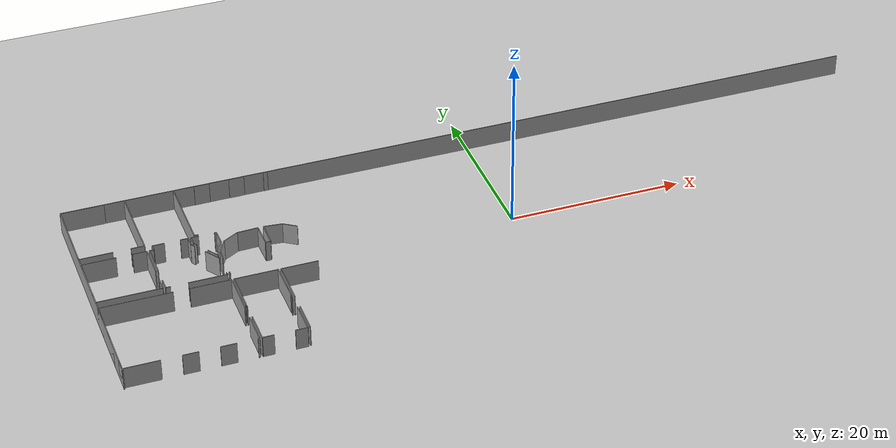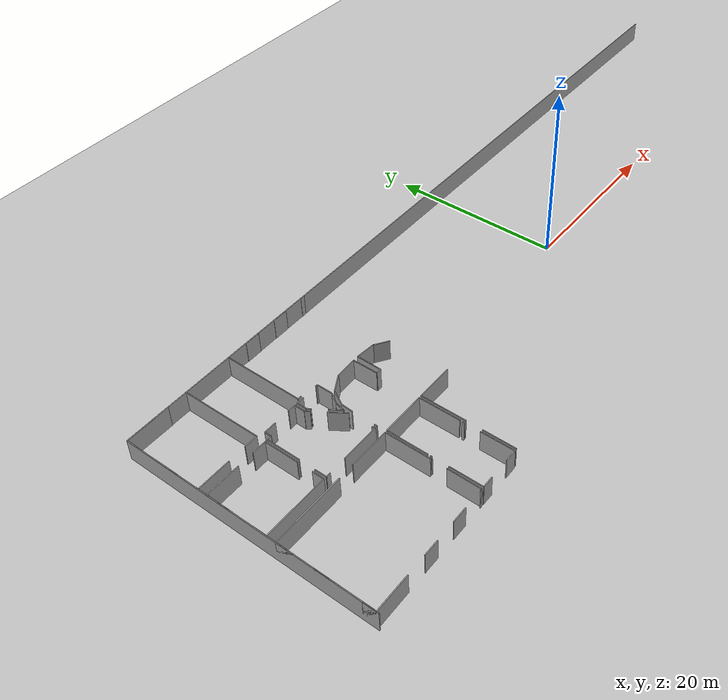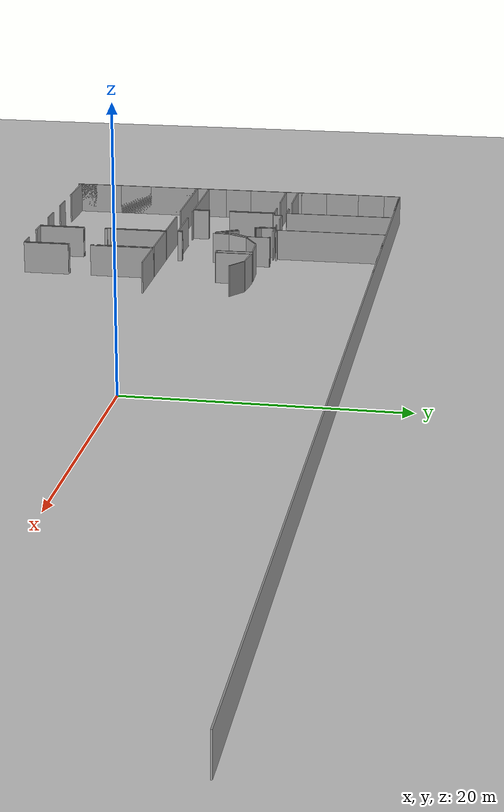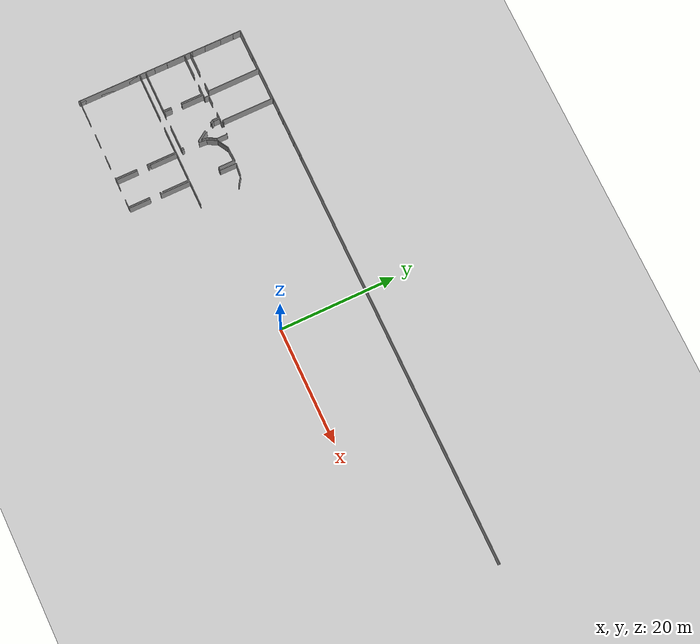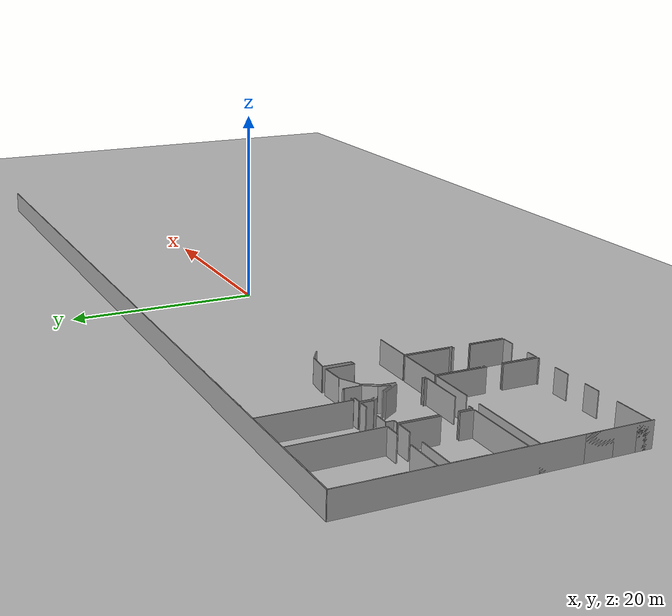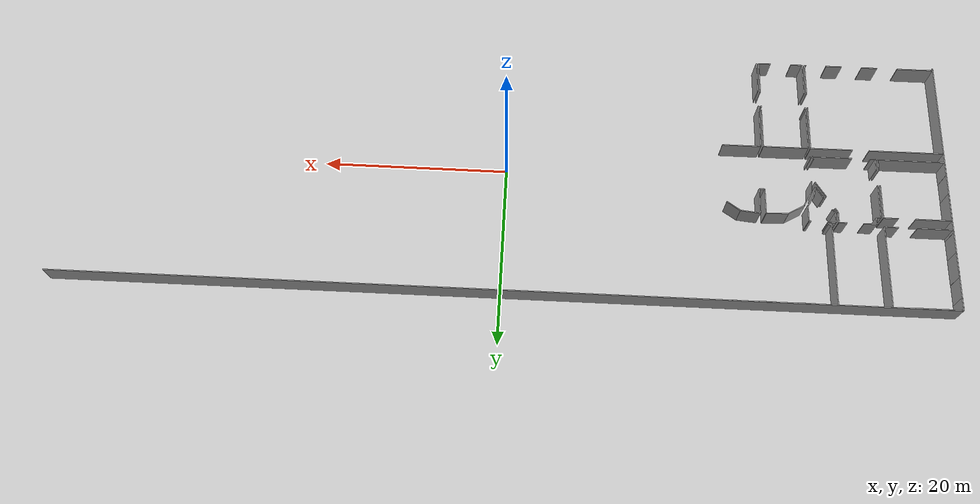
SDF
<sdf version="1.6">
 <world name="default">
  <model name="ground_plane">
   <static>1</static>
   <link name="link">
    <collision name="collision">
     <geometry><plane><normal>0 0 1</normal><size>100 100</size></plane></geometry>
     <surface><friction><ode><mu>100</mu><mu2>50</mu2></ode></friction></surface>
    </collision>
    <visual name="visual">
     <cast_shadows>0</cast_shadows>
     <geometry><plane><normal>0 0 1</normal><size>100 100</size></plane></geometry>
     <material>
      <script><uri>file://media/materials/scripts/gazebo.material</uri><name>Gazebo/Grey</name></script>
     </material>
    </visual>
   </link>
  </model>
  <model name="0510032266_A_40_1_103">
   <static>1</static>
   <link name="Wall_0">
    <collision name="Wall_0_Collision">
     <geometry><box><size>1.51094070373 0.1 2.5</size></box></geometry>
     <pose>0.755470351867 0 1.25 0 0 0</pose>
    </collision>
    <visual name="Wall_0_Visual">
     <pose>0.755470351867 0 1.25 0 0 0</pose>
     <geometry><box><size>1.51094070373 0.1 2.5</size></box></geometry>
     <material>
      <script><uri>file://media/materials/scripts/gazebo.material</uri><name>Gazebo/Grey</name></script>
      <ambient>1 1 1 1</ambient>
     </material>
    </visual>
    <pose>7.24809719992 -9.0151144854 0 0 0 3.14159265359</pose>
   </link>
   <link name="Wall_1">
    <collision name="Wall_1_Collision">
     <geometry><box><size>3.74884943281 0.1 2.5</size></box></geometry>
     <pose>1.87442471641 0 1.25 0 0 0</pose>
    </collision>
    <visual name="Wall_1_Visual">
     <pose>1.87442471641 0 1.25 0 0 0</pose>
     <geometry><box><size>3.74884943281 0.1 2.5</size></box></geometry>
     <material>
      <script><uri>file://media/materials/scripts/gazebo.material</uri><name>Gazebo/Grey</name></script>
      <ambient>1 1 1 1</ambient>
     </material>
    </visual>
    <pose>3.76167230577 -9.0151144854 0 0 0 3.14159265359</pose>
   </link>
   <link name="Wall_2">
    <collision name="Wall_2_Collision">
     <geometry><box><size>0.356882137484 0.1 2.5</size></box></geometry>
     <pose>0.178441068742 0 1.25 0 0 0</pose>
    </collision>
    <visual name="Wall_2_Visual">
     <pose>0.178441068742 0 1.25 0 0 0</pose>
     <geometry><box><size>0.356882137484 0.1 2.5</size></box></geometry>
     <material>
      <script><uri>file://media/materials/scripts/gazebo.material</uri><name>Gazebo/Grey</name></script>
      <ambient>1 1 1 1</ambient>
     </material>
    </visual>
    <pose>0.0128228729583 -9.0151144854 0 0 0 1.57079632679</pose>
   </link>
   <link name="Wall_3">
    <collision name="Wall_3_Collision">
     <geometry><box><size>2.80008379303 0.1 2.5</size></box></geometry>
     <pose>1.40004189652 0 1.25 0 0 0</pose>
    </collision>
    <visual name="Wall_3_Visual">
     <pose>1.40004189652 0 1.25 0 0 0</pose>
     <geometry><box><size>2.80008379303 0.1 2.5</size></box></geometry>
     <material>
      <script><uri>file://media/materials/scripts/gazebo.material</uri><name>Gazebo/Grey</name></script>
      <ambient>1 1 1 1</ambient>
     </material>
    </visual>
    <pose>0.0128228729583 -6.42984555421 0 0 0 1.57079632679</pose>
   </link>
   <link name="Wall_4">
    <collision name="Wall_4_Collision">
     <geometry><box><size>1.328373463 0.1 2.5</size></box></geometry>
     <pose>0.6641867315 0 1.25 0 0 0</pose>
    </collision>
    <visual name="Wall_4_Visual">
     <pose>0.6641867315 0 1.25 0 0 0</pose>
     <geometry><box><size>1.328373463 0.1 2.5</size></box></geometry>
     <material>
      <script><uri>file://media/materials/scripts/gazebo.material</uri><name>Gazebo/Grey</name></script>
      <ambient>1 1 1 1</ambient>
     </material>
    </visual>
    <pose>0.0128228729583 -1.35770102393 0 0 0 1.57079632679</pose>
   </link>
   <link name="Wall_5">
    <collision name="Wall_5_Collision">
     <geometry><box><size>4.88183278212 0.1 2.5</size></box></geometry>
     <pose>2.44091639106 0 1.25 0 0 0</pose>
    </collision>
    <visual name="Wall_5_Visual">
     <pose>2.44091639106 0 1.25 0 0 0</pose>
     <geometry><box><size>4.88183278212 0.1 2.5</size></box></geometry>
     <material>
      <script><uri>file://media/materials/scripts/gazebo.material</uri><name>Gazebo/Grey</name></script>
      <ambient>1 1 1 1</ambient>
     </material>
    </visual>
    <pose>0.0128228729583 -0.0293275609245 0 0 0 0.0</pose>
   </link>
   <link name="Wall_6">
    <collision name="Wall_6_Collision">
     <geometry><box><size>8.98593916581 0.1 2.5</size></box></geometry>
     <pose>4.4929695829 0 1.25 0 0 0</pose>
    </collision>
    <visual name="Wall_6_Visual">
     <pose>4.4929695829 0 1.25 0 0 0</pose>
     <geometry><box><size>8.98593916581 0.1 2.5</size></box></geometry>
     <material>
      <script><uri>file://media/materials/scripts/gazebo.material</uri><name>Gazebo/Grey</name></script>
      <ambient>1 1 1 1</ambient>
     </material>
    </visual>
    <pose>7.19579003498 -0.0293275609245 0 0 0 -1.56497529247</pose>
   </link>
   <link name="Wall_7">
    <collision name="Wall_7_Collision">
     <geometry><box><size>7.20810507138 0.1 2.5</size></box></geometry>
     <pose>3.60405253569 0 1.25 0 0 0</pose>
    </collision>
    <visual name="Wall_7_Visual">
     <pose>3.60405253569 0 1.25 0 0 0</pose>
     <geometry><box><size>7.20810507138 0.1 2.5</size></box></geometry>
     <material>
      <script><uri>file://media/materials/scripts/gazebo.material</uri><name>Gazebo/Grey</name></script>
      <ambient>1 1 1 1</ambient>
     </material>
    </visual>
    <pose>7.22486367763 -17.00795399 0 0 0 3.14159265359</pose>
   </link>
   <link name="Wall_8">
    <collision name="Wall_8_Collision">
     <geometry><box><size>1.56794535679 0.1 2.5</size></box></geometry>
     <pose>0.783972678393 0 1.25 0 0 0</pose>
    </collision>
    <visual name="Wall_8_Visual">
     <pose>0.783972678393 0 1.25 0 0 0</pose>
     <geometry><box><size>1.56794535679 0.1 2.5</size></box></geometry>
     <material>
      <script><uri>file://media/materials/scripts/gazebo.material</uri><name>Gazebo/Grey</name></script>
      <ambient>1 1 1 1</ambient>
     </material>
    </visual>
    <pose>0.0167586062426 -17.00795399 0 0 0 1.57079632679</pose>
   </link>
   <link name="Wall_9">
    <collision name="Wall_9_Collision">
     <geometry><box><size>3.16318692829 0.1 2.5</size></box></geometry>
     <pose>1.58159346414 0 1.25 0 0 0</pose>
    </collision>
    <visual name="Wall_9_Visual">
     <pose>1.58159346414 0 1.25 0 0 0</pose>
     <geometry><box><size>3.16318692829 0.1 2.5</size></box></geometry>
     <material>
      <script><uri>file://media/materials/scripts/gazebo.material</uri><name>Gazebo/Grey</name></script>
      <ambient>1 1 1 1</ambient>
     </material>
    </visual>
    <pose>0.0167586062426 -13.2219055297 0 0 0 1.57079632679</pose>
   </link>
   <link name="Wall_10">
    <collision name="Wall_10_Collision">
     <geometry><box><size>3.83378509627 0.1 2.5</size></box></geometry>
     <pose>1.91689254813 0 1.25 0 0 0</pose>
    </collision>
    <visual name="Wall_10_Visual">
     <pose>1.91689254813 0 1.25 0 0 0</pose>
     <geometry><box><size>3.83378509627 0.1 2.5</size></box></geometry>
     <material>
      <script><uri>file://media/materials/scripts/gazebo.material</uri><name>Gazebo/Grey</name></script>
      <ambient>1 1 1 1</ambient>
     </material>
    </visual>
    <pose>0.0167586062426 -10.0587186014 0 0 0 0.0</pose>
   </link>
   <link name="Wall_11">
    <collision name="Wall_11_Collision">
     <geometry><box><size>1.5968920403 0.1 2.5</size></box></geometry>
     <pose>0.798446020148 0 1.25 0 0 0</pose>
    </collision>
    <visual name="Wall_11_Visual">
     <pose>0.798446020148 0 1.25 0 0 0</pose>
     <geometry><box><size>1.5968920403 0.1 2.5</size></box></geometry>
     <material>
      <script><uri>file://media/materials/scripts/gazebo.material</uri><name>Gazebo/Grey</name></script>
      <ambient>1 1 1 1</ambient>
     </material>
    </visual>
    <pose>5.64968164996 -10.0587186014 0 0 0 0.0</pose>
   </link>
   <link name="Wall_12">
    <collision name="Wall_12_Collision">
     <geometry><box><size>3.85155937561 0.1 2.5</size></box></geometry>
     <pose>1.92577968781 0 1.25 0 0 0</pose>
    </collision>
    <visual name="Wall_12_Visual">
     <pose>1.92577968781 0 1.25 0 0 0</pose>
     <geometry><box><size>3.85155937561 0.1 2.5</size></box></geometry>
     <material>
      <script><uri>file://media/materials/scripts/gazebo.material</uri><name>Gazebo/Grey</name></script>
      <ambient>1 1 1 1</ambient>
     </material>
    </visual>
    <pose>7.24657369026 -10.0587186014 0 0 0 -1.57079632679</pose>
   </link>
   <link name="Wall_13">
    <collision name="Wall_13_Collision">
     <geometry><box><size>1.33147052897 0.1 2.5</size></box></geometry>
     <pose>0.665735264484 0 1.25 0 0 0</pose>
    </collision>
    <visual name="Wall_13_Visual">
     <pose>0.665735264484 0 1.25 0 0 0</pose>
     <geometry><box><size>1.33147052897 0.1 2.5</size></box></geometry>
     <material>
      <script><uri>file://media/materials/scripts/gazebo.material</uri><name>Gazebo/Grey</name></script>
      <ambient>1 1 1 1</ambient>
     </material>
    </visual>
    <pose>7.24657369026 -15.6766604668 0 0 0 -1.58710233902</pose>
   </link>
   <link name="Wall_14">
    <collision name="Wall_14_Collision">
     <geometry><box><size>4.30556525382 0.1 2.5</size></box></geometry>
     <pose>2.15278262691 0 1.25 0 0 0</pose>
    </collision>
    <visual name="Wall_14_Visual">
     <pose>2.15278262691 0 1.25 0 0 0</pose>
     <geometry><box><size>4.30556525382 0.1 2.5</size></box></geometry>
     <material>
      <script><uri>file://media/materials/scripts/gazebo.material</uri><name>Gazebo/Grey</name></script>
      <ambient>1 1 1 1</ambient>
     </material>
    </visual>
    <pose>14.3095644667 -17.0360119596 0 0 0 3.14159265359</pose>
   </link>
   <link name="Wall_15">
    <collision name="Wall_15_Collision">
     <geometry><box><size>0.518881997829 0.1 2.5</size></box></geometry>
     <pose>0.259440998914 0 1.25 0 0 0</pose>
    </collision>
    <visual name="Wall_15_Visual">
     <pose>0.259440998914 0 1.25 0 0 0</pose>
     <geometry><box><size>0.518881997829 0.1 2.5</size></box></geometry>
     <material>
      <script><uri>file://media/materials/scripts/gazebo.material</uri><name>Gazebo/Grey</name></script>
      <ambient>1 1 1 1</ambient>
     </material>
    </visual>
    <pose>8.03892567177 -17.0360119596 0 0 0 3.14159265359</pose>
   </link>
   <link name="Wall_16">
    <collision name="Wall_16_Collision">
     <geometry><box><size>1.34690949718 0.1 2.5</size></box></geometry>
     <pose>0.673454748589 0 1.25 0 0 0</pose>
    </collision>
    <visual name="Wall_16_Visual">
     <pose>0.673454748589 0 1.25 0 0 0</pose>
     <geometry><box><size>1.34690949718 0.1 2.5</size></box></geometry>
     <material>
      <script><uri>file://media/materials/scripts/gazebo.material</uri><name>Gazebo/Grey</name></script>
      <ambient>1 1 1 1</ambient>
     </material>
    </visual>
    <pose>7.52004367394 -17.0360119596 0 0 0 1.57079632679</pose>
   </link>
   <link name="Wall_17">
    <collision name="Wall_17_Collision">
     <geometry><box><size>3.83632427903 0.1 2.5</size></box></geometry>
     <pose>1.91816213952 0 1.25 0 0 0</pose>
    </collision>
    <visual name="Wall_17_Visual">
     <pose>1.91816213952 0 1.25 0 0 0</pose>
     <geometry><box><size>3.83632427903 0.1 2.5</size></box></geometry>
     <material>
      <script><uri>file://media/materials/scripts/gazebo.material</uri><name>Gazebo/Grey</name></script>
      <ambient>1 1 1 1</ambient>
     </material>
    </visual>
    <pose>7.52004367394 -13.8874253322 0 0 0 1.57079632679</pose>
   </link>
   <link name="Wall_18">
    <collision name="Wall_18_Collision">
     <geometry><box><size>0.49057011001 0.1 2.5</size></box></geometry>
     <pose>0.245285055005 0 1.25 0 0 0</pose>
    </collision>
    <visual name="Wall_18_Visual">
     <pose>0.245285055005 0 1.25 0 0 0</pose>
     <geometry><box><size>0.49057011001 0.1 2.5</size></box></geometry>
     <material>
      <script><uri>file://media/materials/scripts/gazebo.material</uri><name>Gazebo/Grey</name></script>
      <ambient>1 1 1 1</ambient>
     </material>
    </visual>
    <pose>7.52004367394 -10.0511010531 0 0 0 0.0</pose>
   </link>
   <link name="Wall_19">
    <collision name="Wall_19_Collision">
     <geometry><box><size>0.748804997112 0.1 2.5</size></box></geometry>
     <pose>0.374402498556 0 1.25 0 0 0</pose>
    </collision>
    <visual name="Wall_19_Visual">
     <pose>0.374402498556 0 1.25 0 0 0</pose>
     <geometry><box><size>0.748804997112 0.1 2.5</size></box></geometry>
     <material>
      <script><uri>file://media/materials/scripts/gazebo.material</uri><name>Gazebo/Grey</name></script>
      <ambient>1 1 1 1</ambient>
     </material>
    </visual>
    <pose>8.01061378395 -10.0511010531 0 0 0 1.57079632679</pose>
   </link>
   <link name="Wall_20">
    <collision name="Wall_20_Collision">
     <geometry><box><size>1.36316026687 0.1 2.5</size></box></geometry>
     <pose>0.681580133434 0 1.25 0 0 0</pose>
    </collision>
    <visual name="Wall_20_Visual">
     <pose>0.681580133434 0 1.25 0 0 0</pose>
     <geometry><box><size>1.36316026687 0.1 2.5</size></box></geometry>
     <material>
      <script><uri>file://media/materials/scripts/gazebo.material</uri><name>Gazebo/Grey</name></script>
      <ambient>1 1 1 1</ambient>
     </material>
    </visual>
    <pose>8.01061378395 -9.30229605601 0 0 0 0.0</pose>
   </link>
   <link name="Wall_21">
    <collision name="Wall_21_Collision">
     <geometry><box><size>0.88376256102 0.1 2.5</size></box></geometry>
     <pose>0.44188128051 0 1.25 0 0 0</pose>
    </collision>
    <visual name="Wall_21_Visual">
     <pose>0.44188128051 0 1.25 0 0 0</pose>
     <geometry><box><size>0.88376256102 0.1 2.5</size></box></geometry>
     <material>
      <script><uri>file://media/materials/scripts/gazebo.material</uri><name>Gazebo/Grey</name></script>
      <ambient>1 1 1 1</ambient>
     </material>
    </visual>
    <pose>11.1282223816 -9.30229605601 0 0 0 0.0</pose>
   </link>
   <link name="Wall_22">
    <collision name="Wall_22_Collision">
     <geometry><box><size>1.18021214872 0.1 2.5</size></box></geometry>
     <pose>0.59010607436 0 1.25 0 0 0</pose>
    </collision>
    <visual name="Wall_22_Visual">
     <pose>0.59010607436 0 1.25 0 0 0</pose>
     <geometry><box><size>1.18021214872 0.1 2.5</size></box></geometry>
     <material>
      <script><uri>file://media/materials/scripts/gazebo.material</uri><name>Gazebo/Grey</name></script>
      <ambient>1 1 1 1</ambient>
     </material>
    </visual>
    <pose>12.0119849426 -9.30229605601 0 0 0 -1.57079632679</pose>
   </link>
   <link name="Wall_23">
    <collision name="Wall_23_Collision">
     <geometry><box><size>0.549975058496 0.1 2.5</size></box></geometry>
     <pose>0.274987529248 0 1.25 0 0 0</pose>
    </collision>
    <visual name="Wall_23_Visual">
     <pose>0.274987529248 0 1.25 0 0 0</pose>
     <geometry><box><size>0.549975058496 0.1 2.5</size></box></geometry>
     <material>
      <script><uri>file://media/materials/scripts/gazebo.material</uri><name>Gazebo/Grey</name></script>
      <ambient>1 1 1 1</ambient>
     </material>
    </visual>
    <pose>12.0119849426 -10.4825082047 0 0 0 -1.01461949919</pose>
   </link>
   <link name="Wall_24">
    <collision name="Wall_24_Collision">
     <geometry><box><size>2.02335979868 0.1 2.5</size></box></geometry>
     <pose>1.01167989934 0 1.25 0 0 0</pose>
    </collision>
    <visual name="Wall_24_Visual">
     <pose>1.01167989934 0 1.25 0 0 0</pose>
     <geometry><box><size>2.02335979868 0.1 2.5</size></box></geometry>
     <material>
      <script><uri>file://media/materials/scripts/gazebo.material</uri><name>Gazebo/Grey</name></script>
      <ambient>1 1 1 1</ambient>
     </material>
    </visual>
    <pose>13.1417943135 -12.2624753223 0 0 0 -0.994610500639</pose>
   </link>
   <link name="Wall_25">
    <collision name="Wall_25_Collision">
     <geometry><box><size>0.36781852518 0.1 2.5</size></box></geometry>
     <pose>0.18390926259 0 1.25 0 0 0</pose>
    </collision>
    <visual name="Wall_25_Visual">
     <pose>0.18390926259 0 1.25 0 0 0</pose>
     <geometry><box><size>0.36781852518 0.1 2.5</size></box></geometry>
     <material>
      <script><uri>file://media/materials/scripts/gazebo.material</uri><name>Gazebo/Grey</name></script>
      <ambient>1 1 1 1</ambient>
     </material>
    </visual>
    <pose>14.2441805105 -16.6740514565 0 0 0 -1.39208511912</pose>
   </link>
   <link name="Wall_26">
    <collision name="Wall_26_Collision">
     <geometry><box><size>0.182440281595 0.1 2.5</size></box></geometry>
     <pose>0.0912201407977 0 1.25 0 0 0</pose>
    </collision>
    <visual name="Wall_26_Visual">
     <pose>0.0912201407977 0 1.25 0 0 0</pose>
     <geometry><box><size>0.182440281595 0.1 2.5</size></box></geometry>
     <material>
      <script><uri>file://media/materials/scripts/gazebo.material</uri><name>Gazebo/Grey</name></script>
      <ambient>1 1 1 1</ambient>
     </material>
    </visual>
    <pose>14.432968749 -28.6749909542 0 0 0 3.14159265359</pose>
   </link>
   <link name="Wall_27">
    <collision name="Wall_27_Collision">
     <geometry><box><size>1.75025867924 0.1 2.5</size></box></geometry>
     <pose>0.875129339622 0 1.25 0 0 0</pose>
    </collision>
    <visual name="Wall_27_Visual">
     <pose>0.875129339622 0 1.25 0 0 0</pose>
     <geometry><box><size>1.75025867924 0.1 2.5</size></box></geometry>
     <material>
      <script><uri>file://media/materials/scripts/gazebo.material</uri><name>Gazebo/Grey</name></script>
      <ambient>1 1 1 1</ambient>
     </material>
    </visual>
    <pose>12.0137623706 -28.6749909542 0 0 0 3.14159265359</pose>
   </link>
   <link name="Wall_28">
    <collision name="Wall_28_Collision">
     <geometry><box><size>1.75482920822 0.1 2.5</size></box></geometry>
     <pose>0.87741460411 0 1.25 0 0 0</pose>
    </collision>
    <visual name="Wall_28_Visual">
     <pose>0.87741460411 0 1.25 0 0 0</pose>
     <geometry><box><size>1.75482920822 0.1 2.5</size></box></geometry>
     <material>
      <script><uri>file://media/materials/scripts/gazebo.material</uri><name>Gazebo/Grey</name></script>
      <ambient>1 1 1 1</ambient>
     </material>
    </visual>
    <pose>8.0101059474 -28.6749909542 0 0 0 3.14159265359</pose>
   </link>
   <link name="Wall_29">
    <collision name="Wall_29_Collision">
     <geometry><box><size>4.00822695216 0.1 2.5</size></box></geometry>
     <pose>2.00411347608 0 1.25 0 0 0</pose>
    </collision>
    <visual name="Wall_29_Visual">
     <pose>2.00411347608 0 1.25 0 0 0</pose>
     <geometry><box><size>4.00822695216 0.1 2.5</size></box></geometry>
     <material>
      <script><uri>file://media/materials/scripts/gazebo.material</uri><name>Gazebo/Grey</name></script>
      <ambient>1 1 1 1</ambient>
     </material>
    </visual>
    <pose>4.00822695216 -28.6749909542 0 0 0 3.14159265359</pose>
   </link>
   <link name="Wall_30">
    <collision name="Wall_30_Collision">
     <geometry><box><size>1.43387650685 0.1 2.5</size></box></geometry>
     <pose>0.716938253423 0 1.25 0 0 0</pose>
    </collision>
    <visual name="Wall_30_Visual">
     <pose>0.716938253423 0 1.25 0 0 0</pose>
     <geometry><box><size>1.43387650685 0.1 2.5</size></box></geometry>
     <material>
      <script><uri>file://media/materials/scripts/gazebo.material</uri><name>Gazebo/Grey</name></script>
      <ambient>1 1 1 1</ambient>
     </material>
    </visual>
    <pose>0.0 -28.6749909542 0 0 0 1.57079632679</pose>
   </link>
   <link name="Wall_31">
    <collision name="Wall_31_Collision">
     <geometry><box><size>2.75831423656 0.1 2.5</size></box></geometry>
     <pose>1.37915711828 0 1.25 0 0 0</pose>
    </collision>
    <visual name="Wall_31_Visual">
     <pose>1.37915711828 0 1.25 0 0 0</pose>
     <geometry><box><size>2.75831423656 0.1 2.5</size></box></geometry>
     <material>
      <script><uri>file://media/materials/scripts/gazebo.material</uri><name>Gazebo/Grey</name></script>
      <ambient>1 1 1 1</ambient>
     </material>
    </visual>
    <pose>0.0 -25.0072684107 0 0 0 1.57079632679</pose>
   </link>
   <link name="Wall_32">
    <collision name="Wall_32_Collision">
     <geometry><box><size>1.94882277139 0.1 2.5</size></box></geometry>
     <pose>0.974411385696 0 1.25 0 0 0</pose>
    </collision>
    <visual name="Wall_32_Visual">
     <pose>0.974411385696 0 1.25 0 0 0</pose>
     <geometry><box><size>1.94882277139 0.1 2.5</size></box></geometry>
     <material>
      <script><uri>file://media/materials/scripts/gazebo.material</uri><name>Gazebo/Grey</name></script>
      <ambient>1 1 1 1</ambient>
     </material>
    </visual>
    <pose>0.0 -20.0062209978 0 0 0 1.57079632679</pose>
   </link>
   <link name="Wall_33">
    <collision name="Wall_33_Collision">
     <geometry><box><size>8.07777516806 0.1 2.5</size></box></geometry>
     <pose>4.03888758403 0 1.25 0 0 0</pose>
    </collision>
    <visual name="Wall_33_Visual">
     <pose>4.03888758403 0 1.25 0 0 0</pose>
     <geometry><box><size>8.07777516806 0.1 2.5</size></box></geometry>
     <material>
      <script><uri>file://media/materials/scripts/gazebo.material</uri><name>Gazebo/Grey</name></script>
      <ambient>1 1 1 1</ambient>
     </material>
    </visual>
    <pose>0.0 -18.0573982264 0 0 0 0.0</pose>
   </link>
   <link name="Wall_34">
    <collision name="Wall_34_Collision">
     <geometry><box><size>4.58309792993 0.1 2.5</size></box></geometry>
     <pose>2.29154896497 0 1.25 0 0 0</pose>
    </collision>
    <visual name="Wall_34_Visual">
     <pose>2.29154896497 0 1.25 0 0 0</pose>
     <geometry><box><size>4.58309792993 0.1 2.5</size></box></geometry>
     <material>
      <script><uri>file://media/materials/scripts/gazebo.material</uri><name>Gazebo/Grey</name></script>
      <ambient>1 1 1 1</ambient>
     </material>
    </visual>
    <pose>9.85951971358 -18.0573982264 0 0 0 0.0</pose>
   </link>
   <link name="Wall_35">
    <collision name="Wall_35_Collision">
     <geometry><box><size>5.11683414693 0.1 2.5</size></box></geometry>
     <pose>2.55841707346 0 1.25 0 0 0</pose>
    </collision>
    <visual name="Wall_35_Visual">
     <pose>2.55841707346 0 1.25 0 0 0</pose>
     <geometry><box><size>5.11683414693 0.1 2.5</size></box></geometry>
     <material>
      <script><uri>file://media/materials/scripts/gazebo.material</uri><name>Gazebo/Grey</name></script>
      <ambient>1 1 1 1</ambient>
     </material>
    </visual>
    <pose>14.4426176435 -18.0573982264 0 0 0 -1.57079632679</pose>
   </link>
   <link name="Wall_36">
    <collision name="Wall_36_Collision">
     <geometry><box><size>3.73438855646 0.1 2.5</size></box></geometry>
     <pose>1.86719427823 0 1.25 0 0 0</pose>
    </collision>
    <visual name="Wall_36_Visual">
     <pose>1.86719427823 0 1.25 0 0 0</pose>
     <geometry><box><size>3.73438855646 0.1 2.5</size></box></geometry>
     <material>
      <script><uri>file://media/materials/scripts/gazebo.material</uri><name>Gazebo/Grey</name></script>
      <ambient>1 1 1 1</ambient>
     </material>
    </visual>
    <pose>14.4426176435 -24.9406148631 0 0 0 -1.57338012468</pose>
   </link>
   <link name="Wall_38">
    <collision name="Wall_38_Collision">
     <geometry><box><size>0.423408725902 0.1 2.5</size></box></geometry>
     <pose>0.211704362951 0 1.25 0 0 0</pose>
    </collision>
    <visual name="Wall_38_Visual">
     <pose>0.211704362951 0 1.25 0 0 0</pose>
     <geometry><box><size>0.423408725902 0.1 2.5</size></box></geometry>
     <material>
      <script><uri>file://media/materials/scripts/gazebo.material</uri><name>Gazebo/Grey</name></script>
      <ambient>1 1 1 1</ambient>
     </material>
    </visual>
    <pose>13.2020999041 -9.0210815649 0 0 0 3.14159265359</pose>
   </link>
   <link name="Wall_39">
    <collision name="Wall_39_Collision">
     <geometry><box><size>8.99645149209 0.1 2.5</size></box></geometry>
     <pose>4.49822574604 0 1.25 0 0 0</pose>
    </collision>
    <visual name="Wall_39_Visual">
     <pose>4.49822574604 0 1.25 0 0 0</pose>
     <geometry><box><size>8.99645149209 0.1 2.5</size></box></geometry>
     <material>
      <script><uri>file://media/materials/scripts/gazebo.material</uri><name>Gazebo/Grey</name></script>
      <ambient>1 1 1 1</ambient>
     </material>
    </visual>
    <pose>12.7786911782 -9.0210815649 0 0 0 1.57079632679</pose>
   </link>
   <link name="Wall_40">
    <collision name="Wall_40_Collision">
     <geometry><box><size>0.129117443551 0.1 2.5</size></box></geometry>
     <pose>0.0645587217754 0 1.25 0 0 0</pose>
    </collision>
    <visual name="Wall_40_Visual">
     <pose>0.0645587217754 0 1.25 0 0 0</pose>
     <geometry><box><size>0.129117443551 0.1 2.5</size></box></geometry>
     <material>
      <script><uri>file://media/materials/scripts/gazebo.material</uri><name>Gazebo/Grey</name></script>
      <ambient>1 1 1 1</ambient>
     </material>
    </visual>
    <pose>12.7786911782 -0.0246300728111 0 0 0 0.0</pose>
   </link>
   <link name="Wall_41">
    <collision name="Wall_41_Collision">
     <geometry><box><size>1.76143108341 0.1 2.5</size></box></geometry>
     <pose>0.880715541703 0 1.25 0 0 0</pose>
    </collision>
    <visual name="Wall_41_Visual">
     <pose>0.880715541703 0 1.25 0 0 0</pose>
     <geometry><box><size>1.76143108341 0.1 2.5</size></box></geometry>
     <material>
      <script><uri>file://media/materials/scripts/gazebo.material</uri><name>Gazebo/Grey</name></script>
      <ambient>1 1 1 1</ambient>
     </material>
    </visual>
    <pose>15.1283239489 -0.0246300728111 0 0 0 0.0</pose>
   </link>
   <link name="Wall_42">
    <collision name="Wall_42_Collision">
     <geometry><box><size>1.76193891996 0.1 2.5</size></box></geometry>
     <pose>0.880969459979 0 1.25 0 0 0</pose>
    </collision>
    <visual name="Wall_42_Visual">
     <pose>0.880969459979 0 1.25 0 0 0</pose>
     <geometry><box><size>1.76193891996 0.1 2.5</size></box></geometry>
     <material>
      <script><uri>file://media/materials/scripts/gazebo.material</uri><name>Gazebo/Grey</name></script>
      <ambient>1 1 1 1</ambient>
     </material>
    </visual>
    <pose>19.1357891463 -0.0246300728111 0 0 0 0.0</pose>
   </link>
   <link name="Wall_43">
    <collision name="Wall_43_Collision">
     <geometry><box><size>0.504916492627 0.1 2.5</size></box></geometry>
     <pose>0.252458246313 0 1.25 0 0 0</pose>
    </collision>
    <visual name="Wall_43_Visual">
     <pose>0.252458246313 0 1.25 0 0 0</pose>
     <geometry><box><size>0.504916492627 0.1 2.5</size></box></geometry>
     <material>
      <script><uri>file://media/materials/scripts/gazebo.material</uri><name>Gazebo/Grey</name></script>
      <ambient>1 1 1 1</ambient>
     </material>
    </visual>
    <pose>23.14820575 -0.0246300728111 0 0 0 0.0</pose>
   </link>
   <link name="Wall_45">
    <collision name="Wall_45_Collision">
     <geometry><box><size>1.45981696457 0.1 2.5</size></box></geometry>
     <pose>0.729908482284 0 1.25 0 0 0</pose>
    </collision>
    <visual name="Wall_45_Visual">
     <pose>0.729908482284 0 1.25 0 0 0</pose>
     <geometry><box><size>1.45981696457 0.1 2.5</size></box></geometry>
     <material>
      <script><uri>file://media/materials/scripts/gazebo.material</uri><name>Gazebo/Grey</name></script>
      <ambient>1 1 1 1</ambient>
     </material>
    </visual>
    <pose>14.2369438396 -13.3639728054 0 0 0 2.1436021653</pose>
   </link>
   <link name="Wall_46">
    <collision name="Wall_46_Collision">
     <geometry><box><size>0.481151165043 0.1 2.5</size></box></geometry>
     <pose>0.240575582521 0 1.25 0 0 0</pose>
    </collision>
    <visual name="Wall_46_Visual">
     <pose>0.240575582521 0 1.25 0 0 0</pose>
     <geometry><box><size>0.481151165043 0.1 2.5</size></box></geometry>
     <material>
      <script><uri>file://media/materials/scripts/gazebo.material</uri><name>Gazebo/Grey</name></script>
      <ambient>1 1 1 1</ambient>
     </material>
    </visual>
    <pose>12.5900298989 -10.8124750049 0 0 0 2.16604411973</pose>
   </link>
   <link name="Wall_47">
    <collision name="Wall_47_Collision">
     <geometry><box><size>1.10822631736 0.1 2.5</size></box></geometry>
     <pose>0.55411315868 0 1.25 0 0 0</pose>
    </collision>
    <visual name="Wall_47_Visual">
     <pose>0.55411315868 0 1.25 0 0 0</pose>
     <geometry><box><size>1.10822631736 0.1 2.5</size></box></geometry>
     <material>
      <script><uri>file://media/materials/scripts/gazebo.material</uri><name>Gazebo/Grey</name></script>
      <ambient>1 1 1 1</ambient>
     </material>
    </visual>
    <pose>12.3202417302 -10.4140772292 0 0 0 1.57079632679</pose>
   </link>
   <link name="Wall_48">
    <collision name="Wall_48_Collision">
     <geometry><box><size>0.859132488209 0.1 2.5</size></box></geometry>
     <pose>0.429566244104 0 1.25 0 0 0</pose>
    </collision>
    <visual name="Wall_48_Visual">
     <pose>0.429566244104 0 1.25 0 0 0</pose>
     <geometry><box><size>0.859132488209 0.1 2.5</size></box></geometry>
     <material>
      <script><uri>file://media/materials/scripts/gazebo.material</uri><name>Gazebo/Grey</name></script>
      <ambient>1 1 1 1</ambient>
     </material>
    </visual>
    <pose>12.3202417302 -9.30585091188 0 0 0 0.0</pose>
   </link>
   <link name="Wall_49">
    <collision name="Wall_49_Collision">
     <geometry><box><size>0.233731773429 0.1 2.5</size></box></geometry>
     <pose>0.116865886714 0 1.25 0 0 0</pose>
    </collision>
    <visual name="Wall_49_Visual">
     <pose>0.116865886714 0 1.25 0 0 0</pose>
     <geometry><box><size>0.233731773429 0.1 2.5</size></box></geometry>
     <material>
      <script><uri>file://media/materials/scripts/gazebo.material</uri><name>Gazebo/Grey</name></script>
      <ambient>1 1 1 1</ambient>
     </material>
    </visual>
    <pose>14.9447410351 -9.30585091188 0 0 0 0.0</pose>
   </link>
   <link name="Wall_50">
    <collision name="Wall_50_Collision">
     <geometry><box><size>1.81513479886 0.1 2.5</size></box></geometry>
     <pose>0.907567399432 0 1.25 0 0 0</pose>
    </collision>
    <visual name="Wall_50_Visual">
     <pose>0.907567399432 0 1.25 0 0 0</pose>
     <geometry><box><size>1.81513479886 0.1 2.5</size></box></geometry>
     <material>
      <script><uri>file://media/materials/scripts/gazebo.material</uri><name>Gazebo/Grey</name></script>
      <ambient>1 1 1 1</ambient>
     </material>
    </visual>
    <pose>15.1784728085 -9.30585091188 0 0 0 -1.57079632679</pose>
   </link>
   <link name="Wall_51">
    <collision name="Wall_51_Collision">
     <geometry><box><size>1.3500119652 0.1 2.5</size></box></geometry>
     <pose>0.675005982602 0 1.25 0 0 0</pose>
    </collision>
    <visual name="Wall_51_Visual">
     <pose>0.675005982602 0 1.25 0 0 0</pose>
     <geometry><box><size>1.3500119652 0.1 2.5</size></box></geometry>
     <material>
      <script><uri>file://media/materials/scripts/gazebo.material</uri><name>Gazebo/Grey</name></script>
      <ambient>1 1 1 1</ambient>
     </material>
    </visual>
    <pose>15.1784728085 -11.1209857107 0 0 0 -2.13665279943</pose>
   </link>
   <link name="Wall_52">
    <collision name="Wall_52_Collision">
     <geometry><box><size>1.12467959136 0.1 2.5</size></box></geometry>
     <pose>0.56233979568 0 1.25 0 0 0</pose>
    </collision>
    <visual name="Wall_52_Visual">
     <pose>0.56233979568 0 1.25 0 0 0</pose>
     <geometry><box><size>1.12467959136 0.1 2.5</size></box></geometry>
     <material>
      <script><uri>file://media/materials/scripts/gazebo.material</uri><name>Gazebo/Grey</name></script>
      <ambient>1 1 1 1</ambient>
     </material>
    </visual>
    <pose>14.4546787616 -12.2605709352 0 0 0 -1.76562381613</pose>
   </link>
   <link name="Wall_55">
    <collision name="Wall_55_Collision">
     <geometry><box><size>0.369831969581 0.1 2.5</size></box></geometry>
     <pose>0.18491598479 0 1.25 0 0 0</pose>
    </collision>
    <visual name="Wall_55_Visual">
     <pose>0.18491598479 0 1.25 0 0 0</pose>
     <geometry><box><size>0.369831969581 0.1 2.5</size></box></geometry>
     <material>
      <script><uri>file://media/materials/scripts/gazebo.material</uri><name>Gazebo/Grey</name></script>
      <ambient>1 1 1 1</ambient>
     </material>
    </visual>
    <pose>14.5774482483 -17.0398207337 0 0 0 1.57079632679</pose>
   </link>
   <link name="Wall_56">
    <collision name="Wall_56_Collision">
     <geometry><box><size>1.34673502926 0.1 2.5</size></box></geometry>
     <pose>0.673367514628 0 1.25 0 0 0</pose>
    </collision>
    <visual name="Wall_56_Visual">
     <pose>0.673367514628 0 1.25 0 0 0</pose>
     <geometry><box><size>1.34673502926 0.1 2.5</size></box></geometry>
     <material>
      <script><uri>file://media/materials/scripts/gazebo.material</uri><name>Gazebo/Grey</name></script>
      <ambient>1 1 1 1</ambient>
     </material>
    </visual>
    <pose>14.5774482483 -14.0734204696 0 0 0 1.50693090999</pose>
   </link>
   <link name="Wall_57">
    <collision name="Wall_57_Collision">
     <geometry><box><size>1.8210966474 0.1 2.5</size></box></geometry>
     <pose>0.910548323698 0 1.25 0 0 0</pose>
    </collision>
    <visual name="Wall_57_Visual">
     <pose>0.910548323698 0 1.25 0 0 0</pose>
     <geometry><box><size>1.8210966474 0.1 2.5</size></box></geometry>
     <material>
      <script><uri>file://media/materials/scripts/gazebo.material</uri><name>Gazebo/Grey</name></script>
      <ambient>1 1 1 1</ambient>
     </material>
    </visual>
    <pose>14.6633995848 -12.7294310326 0 0 0 1.07649610509</pose>
   </link>
   <link name="Wall_58">
    <collision name="Wall_58_Collision">
     <geometry><box><size>2.03852178155 0.1 2.5</size></box></geometry>
     <pose>1.01926089078 0 1.25 0 0 0</pose>
    </collision>
    <visual name="Wall_58_Visual">
     <pose>1.01926089078 0 1.25 0 0 0</pose>
     <geometry><box><size>2.03852178155 0.1 2.5</size></box></geometry>
     <material>
      <script><uri>file://media/materials/scripts/gazebo.material</uri><name>Gazebo/Grey</name></script>
      <ambient>1 1 1 1</ambient>
     </material>
    </visual>
    <pose>15.5273565203 -11.1263179946 0 0 0 0.522645493555</pose>
   </link>
   <link name="Wall_59">
    <collision name="Wall_59_Collision">
     <geometry><box><size>2.37315757127 0.1 2.5</size></box></geometry>
     <pose>1.18657878563 0 1.25 0 0 0</pose>
    </collision>
    <visual name="Wall_59_Visual">
     <pose>1.18657878563 0 1.25 0 0 0</pose>
     <geometry><box><size>2.37315757127 0.1 2.5</size></box></geometry>
     <material>
      <script><uri>file://media/materials/scripts/gazebo.material</uri><name>Gazebo/Grey</name></script>
      <ambient>1 1 1 1</ambient>
     </material>
    </visual>
    <pose>17.2937390101 -10.1087405019 0 0 0 0.0404555078261</pose>
   </link>
   <link name="Wall_60">
    <collision name="Wall_60_Collision">
     <geometry><box><size>2.86083449494 0.1 2.5</size></box></geometry>
     <pose>1.43041724747 0 1.25 0 0 0</pose>
    </collision>
    <visual name="Wall_60_Visual">
     <pose>1.43041724747 0 1.25 0 0 0</pose>
     <geometry><box><size>2.86083449494 0.1 2.5</size></box></geometry>
     <material>
      <script><uri>file://media/materials/scripts/gazebo.material</uri><name>Gazebo/Grey</name></script>
      <ambient>1 1 1 1</ambient>
     </material>
    </visual>
    <pose>19.6649548343 -10.0127593934 0 0 0 -1.56409514454</pose>
   </link>
   <link name="Wall_61">
    <collision name="Wall_61_Collision">
     <geometry><box><size>0.57601361002 0.1 2.5</size></box></geometry>
     <pose>0.28800680501 0 1.25 0 0 0</pose>
    </collision>
    <visual name="Wall_61_Visual">
     <pose>0.28800680501 0 1.25 0 0 0</pose>
     <geometry><box><size>0.57601361002 0.1 2.5</size></box></geometry>
     <material>
      <script><uri>file://media/materials/scripts/gazebo.material</uri><name>Gazebo/Grey</name></script>
      <ambient>1 1 1 1</ambient>
     </material>
    </visual>
    <pose>19.6841256642 -12.8735296545 0 0 0 0.0</pose>
   </link>
   <link name="Wall_62">
    <collision name="Wall_62_Collision">
     <geometry><box><size>2.86083449494 0.1 2.5</size></box></geometry>
     <pose>1.43041724747 0 1.25 0 0 0</pose>
    </collision>
    <visual name="Wall_62_Visual">
     <pose>1.43041724747 0 1.25 0 0 0</pose>
     <geometry><box><size>2.86083449494 0.1 2.5</size></box></geometry>
     <material>
      <script><uri>file://media/materials/scripts/gazebo.material</uri><name>Gazebo/Grey</name></script>
      <ambient>1 1 1 1</ambient>
     </material>
    </visual>
    <pose>20.2601392742 -12.8735296545 0 0 0 1.56409514454</pose>
   </link>
   <link name="Wall_63">
    <collision name="Wall_63_Collision">
     <geometry><box><size>2.12347402665 0.1 2.5</size></box></geometry>
     <pose>1.06173701333 0 1.25 0 0 0</pose>
    </collision>
    <visual name="Wall_63_Visual">
     <pose>1.06173701333 0 1.25 0 0 0</pose>
     <geometry><box><size>2.12347402665 0.1 2.5</size></box></geometry>
     <material>
      <script><uri>file://media/materials/scripts/gazebo.material</uri><name>Gazebo/Grey</name></script>
      <ambient>1 1 1 1</ambient>
     </material>
    </visual>
    <pose>20.279310104 -10.0127593934 0 0 0 -0.104160290389</pose>
   </link>
   <link name="Wall_64">
    <collision name="Wall_64_Collision">
     <geometry><box><size>1.71225109263 0.1 2.5</size></box></geometry>
     <pose>0.856125546316 0 1.25 0 0 0</pose>
    </collision>
    <visual name="Wall_64_Visual">
     <pose>0.856125546316 0 1.25 0 0 0</pose>
     <geometry><box><size>1.71225109263 0.1 2.5</size></box></geometry>
     <material>
      <script><uri>file://media/materials/scripts/gazebo.material</uri><name>Gazebo/Grey</name></script>
      <ambient>1 1 1 1</ambient>
     </material>
    </visual>
    <pose>22.391275368 -10.2335413347 0 0 0 -0.601966567724</pose>
   </link>
   <link name="Wall_70">
    <collision name="Wall_70_Collision">
     <geometry><box><size>4.62981889279 0.1 2.5</size></box></geometry>
     <pose>2.31490944639 0 1.25 0 0 0</pose>
    </collision>
    <visual name="Wall_70_Visual">
     <pose>2.31490944639 0 1.25 0 0 0</pose>
     <geometry><box><size>4.62981889279 0.1 2.5</size></box></geometry>
     <material>
      <script><uri>file://media/materials/scripts/gazebo.material</uri><name>Gazebo/Grey</name></script>
      <ambient>1 1 1 1</ambient>
     </material>
    </visual>
    <pose>14.6942506554 -22.6804882848 0 0 0 1.57079632679</pose>
   </link>
   <link name="Wall_71">
    <collision name="Wall_71_Collision">
     <geometry><box><size>4.88589547454 0.1 2.5</size></box></geometry>
     <pose>2.44294773727 0 1.25 0 0 0</pose>
    </collision>
    <visual name="Wall_71_Visual">
     <pose>2.44294773727 0 1.25 0 0 0</pose>
     <geometry><box><size>4.88589547454 0.1 2.5</size></box></geometry>
     <material>
      <script><uri>file://media/materials/scripts/gazebo.material</uri><name>Gazebo/Grey</name></script>
      <ambient>1 1 1 1</ambient>
     </material>
    </visual>
    <pose>14.6942506554 -18.0506693921 0 0 0 0.0</pose>
   </link>
   <link name="Wall_72">
    <collision name="Wall_72_Collision">
     <geometry><box><size>4.62984072858 0.1 2.5</size></box></geometry>
     <pose>2.31492036429 0 1.25 0 0 0</pose>
    </collision>
    <visual name="Wall_72_Visual">
     <pose>2.31492036429 0 1.25 0 0 0</pose>
     <geometry><box><size>4.62984072858 0.1 2.5</size></box></geometry>
     <material>
      <script><uri>file://media/materials/scripts/gazebo.material</uri><name>Gazebo/Grey</name></script>
      <ambient>1 1 1 1</ambient>
     </material>
    </visual>
    <pose>19.58014613 -18.0506693921 0 0 0 -1.56772506654</pose>
   </link>
   <link name="Wall_73">
    <collision name="Wall_73_Collision">
     <geometry><box><size>1.343989437 0.1 2.5</size></box></geometry>
     <pose>0.6719947185 0 1.25 0 0 0</pose>
    </collision>
    <visual name="Wall_73_Visual">
     <pose>0.6719947185 0 1.25 0 0 0</pose>
     <geometry><box><size>1.343989437 0.1 2.5</size></box></geometry>
     <material>
      <script><uri>file://media/materials/scripts/gazebo.material</uri><name>Gazebo/Grey</name></script>
      <ambient>1 1 1 1</ambient>
     </material>
    </visual>
    <pose>19.6073153855 -28.6749909542 0 0 0 3.14159265359</pose>
   </link>
   <link name="Wall_74">
    <collision name="Wall_74_Collision">
     <geometry><box><size>1.27682805289 0.1 2.5</size></box></geometry>
     <pose>0.638414026446 0 1.25 0 0 0</pose>
    </collision>
    <visual name="Wall_74_Visual">
     <pose>0.638414026446 0 1.25 0 0 0</pose>
     <geometry><box><size>1.27682805289 0.1 2.5</size></box></geometry>
     <material>
      <script><uri>file://media/materials/scripts/gazebo.material</uri><name>Gazebo/Grey</name></script>
      <ambient>1 1 1 1</ambient>
     </material>
    </visual>
    <pose>15.988218192 -28.6749909542 0 0 0 3.14159265359</pose>
   </link>
   <link name="Wall_75">
    <collision name="Wall_75_Collision">
     <geometry><box><size>3.70619116237 0.1 2.5</size></box></geometry>
     <pose>1.85309558119 0 1.25 0 0 0</pose>
    </collision>
    <visual name="Wall_75_Visual">
     <pose>1.85309558119 0 1.25 0 0 0</pose>
     <geometry><box><size>3.70619116237 0.1 2.5</size></box></geometry>
     <material>
      <script><uri>file://media/materials/scripts/gazebo.material</uri><name>Gazebo/Grey</name></script>
      <ambient>1 1 1 1</ambient>
     </material>
    </visual>
    <pose>14.7113901391 -28.6749909542 0 0 0 1.57079632679</pose>
   </link>
   <link name="Wall_76">
    <collision name="Wall_76_Collision">
     <geometry><box><size>0.220781941332 0.1 2.5</size></box></geometry>
     <pose>0.110390970666 0 1.25 0 0 0</pose>
    </collision>
    <visual name="Wall_76_Visual">
     <pose>0.110390970666 0 1.25 0 0 0</pose>
     <geometry><box><size>0.220781941332 0.1 2.5</size></box></geometry>
     <material>
      <script><uri>file://media/materials/scripts/gazebo.material</uri><name>Gazebo/Grey</name></script>
      <ambient>1 1 1 1</ambient>
     </material>
    </visual>
    <pose>14.7113901391 -23.1645834788 0 0 0 1.57079632679</pose>
   </link>
   <link name="Wall_77">
    <collision name="Wall_77_Collision">
     <geometry><box><size>0.229161244453 0.1 2.5</size></box></geometry>
     <pose>0.114580622227 0 1.25 0 0 0</pose>
    </collision>
    <visual name="Wall_77_Visual">
     <pose>0.114580622227 0 1.25 0 0 0</pose>
     <geometry><box><size>0.229161244453 0.1 2.5</size></box></geometry>
     <material>
      <script><uri>file://media/materials/scripts/gazebo.material</uri><name>Gazebo/Grey</name></script>
      <ambient>1 1 1 1</ambient>
     </material>
    </visual>
    <pose>19.5983012867 -22.9438015375 0 0 0 -1.57079632679</pose>
   </link>
   <link name="Wall_78">
    <collision name="Wall_78_Collision">
     <geometry><box><size>3.72334155748 0.1 2.5</size></box></geometry>
     <pose>1.86167077874 0 1.25 0 0 0</pose>
    </collision>
    <visual name="Wall_78_Visual">
     <pose>1.86167077874 0 1.25 0 0 0</pose>
     <geometry><box><size>3.72334155748 0.1 2.5</size></box></geometry>
     <material>
      <script><uri>file://media/materials/scripts/gazebo.material</uri><name>Gazebo/Grey</name></script>
      <ambient>1 1 1 1</ambient>
     </material>
    </visual>
    <pose>19.5983012867 -24.9516603081 0 0 0 -1.56837535427</pose>
   </link>
   <link name="Wall_81">
    <collision name="Wall_81_Collision">
     <geometry><box><size>3.66721470695 0.1 2.5</size></box></geometry>
     <pose>1.83360735347 0 1.25 0 0 0</pose>
    </collision>
    <visual name="Wall_81_Visual">
     <pose>1.83360735347 0 1.25 0 0 0</pose>
     <geometry><box><size>3.66721470695 0.1 2.5</size></box></geometry>
     <material>
      <script><uri>file://media/materials/scripts/gazebo.material</uri><name>Gazebo/Grey</name></script>
      <ambient>1 1 1 1</ambient>
     </material>
    </visual>
    <pose>19.8665659458 -28.6654690188 0 0 0 1.57079632679</pose>
   </link>
   <link name="Wall_82">
    <collision name="Wall_82_Collision">
     <geometry><box><size>5.11721502434 0.1 2.5</size></box></geometry>
     <pose>2.55860751217 0 1.25 0 0 0</pose>
    </collision>
    <visual name="Wall_82_Visual">
     <pose>2.55860751217 0 1.25 0 0 0</pose>
     <geometry><box><size>5.11721502434 0.1 2.5</size></box></geometry>
     <material>
      <script><uri>file://media/materials/scripts/gazebo.material</uri><name>Gazebo/Grey</name></script>
      <ambient>1 1 1 1</ambient>
     </material>
    </visual>
    <pose>19.8665659458 -23.1645834788 0 0 0 1.57079632679</pose>
   </link>
   <link name="Wall_83">
    <collision name="Wall_83_Collision">
     <geometry><box><size>4.19384121221 0.1 2.5</size></box></geometry>
     <pose>2.0969206061 0 1.25 0 0 0</pose>
    </collision>
    <visual name="Wall_83_Visual">
     <pose>2.0969206061 0 1.25 0 0 0</pose>
     <geometry><box><size>4.19384121221 0.1 2.5</size></box></geometry>
     <material>
      <script><uri>file://media/materials/scripts/gazebo.material</uri><name>Gazebo/Grey</name></script>
      <ambient>1 1 1 1</ambient>
     </material>
    </visual>
    <pose>19.8665659458 -18.0473684545 0 0 0 0.0</pose>
   </link>
   <link name="Wall_373">
    <collision name="Wall_373_Collision">
     <geometry><box><size>28.941224267 0.1 2.5</size></box></geometry>
     <pose>14.4706121335 0 1.25 0 0 0</pose>
    </collision>
    <visual name="Wall_373_Visual">
     <pose>14.4706121335 0 1.25 0 0 0</pose>
     <geometry><box><size>28.941224267 0.1 2.5</size></box></geometry>
     <material>
      <script><uri>file://media/materials/scripts/gazebo.material</uri><name>Gazebo/Grey</name></script>
      <ambient>1 1 1 1</ambient>
     </material>
    </visual>
    <pose>0.0 -28.941224267 0 0 0 1.57079632679</pose>
   </link>
   <link name="Wall_374">
    <collision name="Wall_374_Collision">
     <geometry><box><size>95.1681891183 0.1 2.5</size></box></geometry>
     <pose>47.5840945592 0 1.25 0 0 0</pose>
    </collision>
    <visual name="Wall_374_Visual">
     <pose>47.5840945592 0 1.25 0 0 0</pose>
     <geometry><box><size>95.1681891183 0.1 2.5</size></box></geometry>
     <material>
      <script><uri>file://media/materials/scripts/gazebo.material</uri><name>Gazebo/Grey</name></script>
      <ambient>1 1 1 1</ambient>
     </material>
    </visual>
   </link>
   <pose>-47.55 14.841224267 0 0 0 0</pose>
  </model>
 </world>
</sdf>
